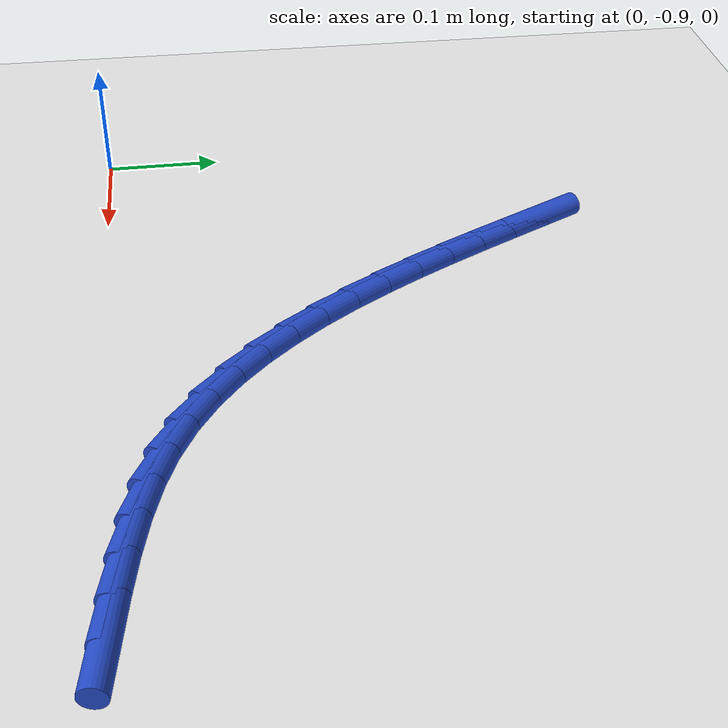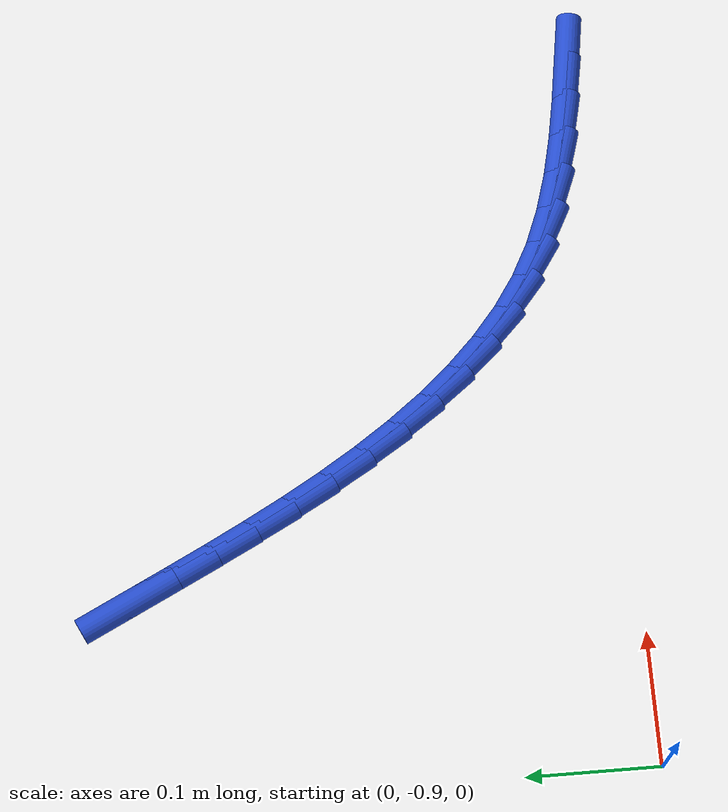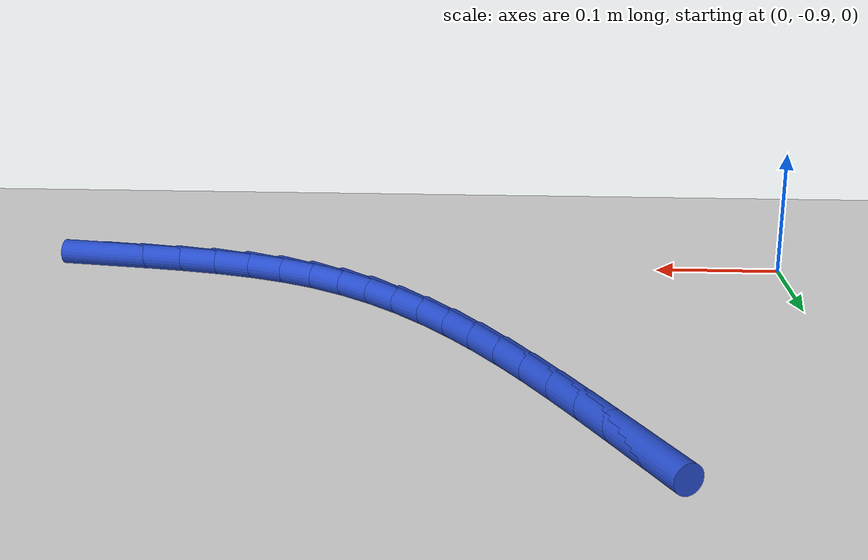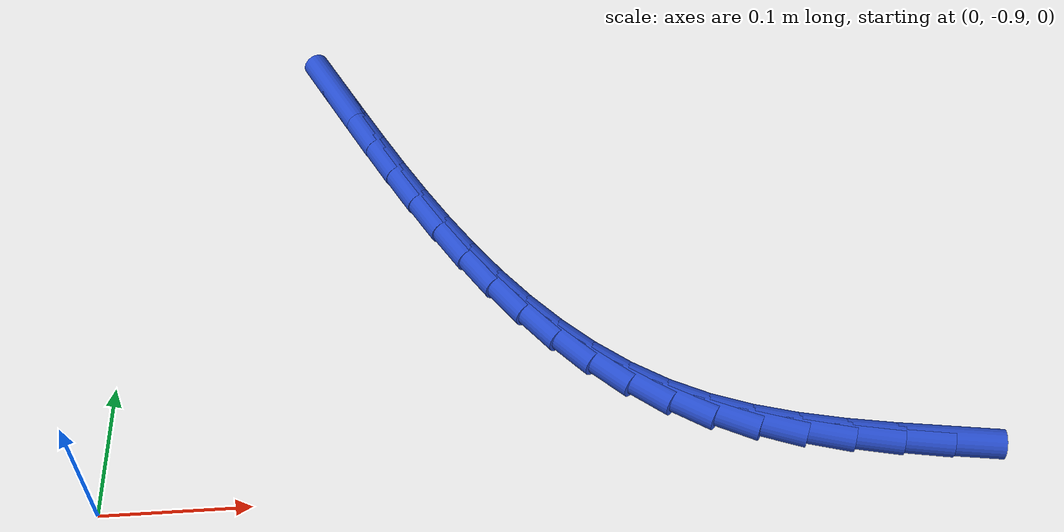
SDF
<sdf version="1.6">
 <world name="default">
  <model name="ground_plane">
   <static>1</static>
   <link name="link">
    <collision name="collision">
     <geometry><plane><normal>0 0 1</normal><size>100 100</size></plane></geometry>
     <surface><friction><ode><mu>100</mu><mu2>50</mu2></ode></friction></surface>
    </collision>
    <visual name="visual">
     <cast_shadows>0</cast_shadows>
     <geometry><plane><normal>0 0 1</normal><size>100 100</size></plane></geometry>
     <material>
      <script><uri>file://media/materials/scripts/gazebo.material</uri><name>Gazebo/WhiteGlow</name></script>
     </material>
    </visual>
   </link>
  </model>
  <model name="line">
   <link name="link_195">
    <pose>0.5586510986948158 -0.8879259848833833 0.01 0 1.57 -0.1501870293802499</pose>
    <collision name="collision">
     <geometry><cylinder><radius>0.01</radius><length>0.08</length></cylinder></geometry>
    </collision>
    <visual name="visual">
     <material>
      <script><name>Gazebo/Blue</name><uri>file://media/materials/scripts/gazebo.material</uri></script>
     </material>
     <geometry><cylinder><radius>0.01</radius><length>0.08</length></cylinder></geometry>
    </visual>
   </link>
   <link name="link_196">
    <pose>0.5256419007540138 -0.8829308176677398 0.01 0 1.57 -0.17783117410020177</pose>
    <collision name="collision">
     <geometry><cylinder><radius>0.01</radius><length>0.08</length></cylinder></geometry>
    </collision>
    <visual name="visual">
     <material>
      <script><name>Gazebo/Blue</name><uri>file://media/materials/scripts/gazebo.material</uri></script>
     </material>
     <geometry><cylinder><radius>0.01</radius><length>0.08</length></cylinder></geometry>
    </visual>
   </link>
   <link name="link_197">
    <pose>0.4935247905091747 -0.8771584169126645 0.01 0 1.57 -0.22356520739174812</pose>
    <collision name="collision">
     <geometry><cylinder><radius>0.01</radius><length>0.08</length></cylinder></geometry>
    </collision>
    <visual name="visual">
     <material>
      <script><name>Gazebo/Blue</name><uri>file://media/materials/scripts/gazebo.material</uri></script>
     </material>
     <geometry><cylinder><radius>0.01</radius><length>0.08</length></cylinder></geometry>
    </visual>
   </link>
   <link name="link_198">
    <pose>0.46247357976050946 -0.8700984300568178 0.01 0 1.57 -0.2888227606721886</pose>
    <collision name="collision">
     <geometry><cylinder><radius>0.01</radius><length>0.08</length></cylinder></geometry>
    </collision>
    <visual name="visual">
     <material>
      <script><name>Gazebo/Blue</name><uri>file://media/materials/scripts/gazebo.material</uri></script>
     </material>
     <geometry><cylinder><radius>0.01</radius><length>0.08</length></cylinder></geometry>
    </visual>
   </link>
   <link name="link_199">
    <pose>0.43266208030822684 -0.8612405045388601 0.01 0 1.57 -0.37463463708680067</pose>
    <collision name="collision">
     <geometry><cylinder><radius>0.01</radius><length>0.08</length></cylinder></geometry>
    </collision>
    <visual name="visual">
     <material>
      <script><name>Gazebo/Blue</name><uri>file://media/materials/scripts/gazebo.material</uri></script>
     </material>
     <geometry><cylinder><radius>0.01</radius><length>0.08</length></cylinder></geometry>
    </visual>
   </link>
   <link name="link_200">
    <pose>0.4042641039525364 -0.8500742877974522 0.01 0 1.57 -0.4799952725900526</pose>
    <collision name="collision">
     <geometry><cylinder><radius>0.01</radius><length>0.08</length></cylinder></geometry>
    </collision>
    <visual name="visual">
     <material>
      <script><name>Gazebo/Blue</name><uri>file://media/materials/scripts/gazebo.material</uri></script>
     </material>
     <geometry><cylinder><radius>0.01</radius><length>0.08</length></cylinder></geometry>
    </visual>
   </link>
   <link name="link_201">
    <pose>0.37744507903971874 -0.8361121737444587 0.01 0 1.57 -0.5886847781438611</pose>
    <collision name="collision">
     <geometry><cylinder><radius>0.01</radius><length>0.08</length></cylinder></geometry>
    </collision>
    <visual name="visual">
     <material>
      <script><name>Gazebo/Blue</name><uri>file://media/materials/scripts/gazebo.material</uri></script>
     </material>
     <geometry><cylinder><radius>0.01</radius><length>0.08</length></cylinder></geometry>
    </visual>
   </link>
   <link name="link_202">
    <pose>0.3522212230756987 -0.8192714037938673 0.01 0 1.57 -0.6864740113010391</pose>
    <collision name="collision">
     <geometry><cylinder><radius>0.01</radius><length>0.08</length></cylinder></geometry>
    </collision>
    <visual name="visual">
     <material>
      <script><name>Gazebo/Blue</name><uri>file://media/materials/scripts/gazebo.material</uri></script>
     </material>
     <geometry><cylinder><radius>0.01</radius><length>0.08</length></cylinder></geometry>
    </visual>
   </link>
   <link name="link_203">
    <pose>0.3284803736162097 -0.7998175472829754 0.01 0 1.57 -0.7721714403560812</pose>
    <collision name="collision">
     <geometry><cylinder><radius>0.01</radius><length>0.08</length></cylinder></geometry>
    </collision>
    <visual name="visual">
     <material>
      <script><name>Gazebo/Blue</name><uri>file://media/materials/scripts/gazebo.material</uri></script>
     </material>
     <geometry><cylinder><radius>0.01</radius><length>0.08</length></cylinder></geometry>
    </visual>
   </link>
   <link name="link_204">
    <pose>0.3061061804920876 -0.7780275359270445 0.01 0 1.57 -0.8459236212109703</pose>
    <collision name="collision">
     <geometry><cylinder><radius>0.01</radius><length>0.08</length></cylinder></geometry>
    </collision>
    <visual name="visual">
     <material>
      <script><name>Gazebo/Blue</name><uri>file://media/materials/scripts/gazebo.material</uri></script>
     </material>
     <geometry><cylinder><radius>0.01</radius><length>0.08</length></cylinder></geometry>
    </visual>
   </link>
   <link name="link_205">
    <pose>0.28498229353416826 -0.7541783014413364 0.01 0 1.57 -0.9084345405894793</pose>
    <collision name="collision">
     <geometry><cylinder><radius>0.01</radius><length>0.08</length></cylinder></geometry>
    </collision>
    <visual name="visual">
     <material>
      <script><name>Gazebo/Blue</name><uri>file://media/materials/scripts/gazebo.material</uri></script>
     </material>
     <geometry><cylinder><radius>0.01</radius><length>0.08</length></cylinder></geometry>
    </visual>
   </link>
   <link name="link_206">
    <pose>0.2649923625732871 -0.7285467755411117 0.01 0 1.57 -0.960651664473194</pose>
    <collision name="collision">
     <geometry><cylinder><radius>0.01</radius><length>0.08</length></cylinder></geometry>
    </collision>
    <visual name="visual">
     <material>
      <script><name>Gazebo/Blue</name><uri>file://media/materials/scripts/gazebo.material</uri></script>
     </material>
     <geometry><cylinder><radius>0.01</radius><length>0.08</length></cylinder></geometry>
    </visual>
   </link>
   <link name="link_207">
    <pose>0.24602003744028111 -0.7014098899416336 0.01 0 1.57 -1.003554997635252</pose>
    <collision name="collision">
     <geometry><cylinder><radius>0.01</radius><length>0.08</length></cylinder></geometry>
    </collision>
    <visual name="visual">
     <material>
      <script><name>Gazebo/Blue</name><uri>file://media/materials/scripts/gazebo.material</uri></script>
     </material>
     <geometry><cylinder><radius>0.01</radius><length>0.08</length></cylinder></geometry>
    </visual>
   </link>
   <link name="link_208">
    <pose>0.22794896796598563 -0.6730445763581628 0.01 0 1.57 -1.0380343576225222</pose>
    <collision name="collision">
     <geometry><cylinder><radius>0.01</radius><length>0.08</length></cylinder></geometry>
    </collision>
    <visual name="visual">
     <material>
      <script><name>Gazebo/Blue</name><uri>file://media/materials/scripts/gazebo.material</uri></script>
     </material>
     <geometry><cylinder><radius>0.01</radius><length>0.08</length></cylinder></geometry>
    </visual>
   </link>
   <link name="link_209">
    <pose>0.21066280398123646 -0.6437277665059611 0.01 0 1.57 -1.0648263836723584</pose>
    <collision name="collision">
     <geometry><cylinder><radius>0.01</radius><length>0.08</length></cylinder></geometry>
    </collision>
    <visual name="visual">
     <material>
      <script><name>Gazebo/Blue</name><uri>file://media/materials/scripts/gazebo.material</uri></script>
     </material>
     <geometry><cylinder><radius>0.01</radius><length>0.08</length></cylinder></geometry>
    </visual>
   </link>
   <link name="link_210">
    <pose>0.1940451953168693 -0.6137363921002892 0.01 0 1.57 -1.0844857283676594</pose>
    <collision name="collision">
     <geometry><cylinder><radius>0.01</radius><length>0.08</length></cylinder></geometry>
    </collision>
    <visual name="visual">
     <material>
      <script><name>Gazebo/Blue</name><uri>file://media/materials/scripts/gazebo.material</uri></script>
     </material>
     <geometry><cylinder><radius>0.01</radius><length>0.08</length></cylinder></geometry>
    </visual>
   </link>
   <link name="link_211">
    <pose>0.17797979180372073 -0.58334738485641 0.01 0 1.57 -1.0973721367702578</pose>
    <collision name="collision">
     <geometry><cylinder><radius>0.01</radius><length>0.08</length></cylinder></geometry>
    </collision>
    <visual name="visual">
     <material>
      <script><name>Gazebo/Blue</name><uri>file://media/materials/scripts/gazebo.material</uri></script>
     </material>
     <geometry><cylinder><radius>0.01</radius><length>0.08</length></cylinder></geometry>
    </visual>
   </link>
   <link name="link_212">
    <pose>0.16235024327262626 -0.5528376764895846 0.01 0 1.57 -1.1036414947872117</pose>
    <collision name="collision">
     <geometry><cylinder><radius>0.01</radius><length>0.08</length></cylinder></geometry>
    </collision>
    <visual name="visual">
     <material>
      <script><name>Gazebo/Blue</name><uri>file://media/materials/scripts/gazebo.material</uri></script>
     </material>
     <geometry><cylinder><radius>0.01</radius><length>0.08</length></cylinder></geometry>
    </visual>
   </link>
   <link name="link_213">
    <pose>0.1470401995544218 -0.5224841987150746 0.01 0 1.57 -1.104679016389084</pose>
    <collision name="collision">
     <geometry><cylinder><radius>0.01</radius><length>0.08</length></cylinder></geometry>
    </collision>
    <visual name="visual">
     <material>
      <script><name>Gazebo/Blue</name><uri>file://media/materials/scripts/gazebo.material</uri></script>
     </material>
     <geometry><cylinder><radius>0.01</radius><length>0.08</length></cylinder></geometry>
    </visual>
   </link>
  </model>
 </world>
</sdf>
